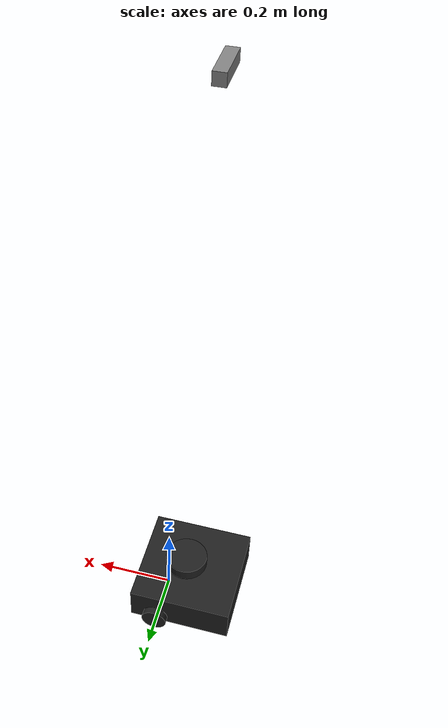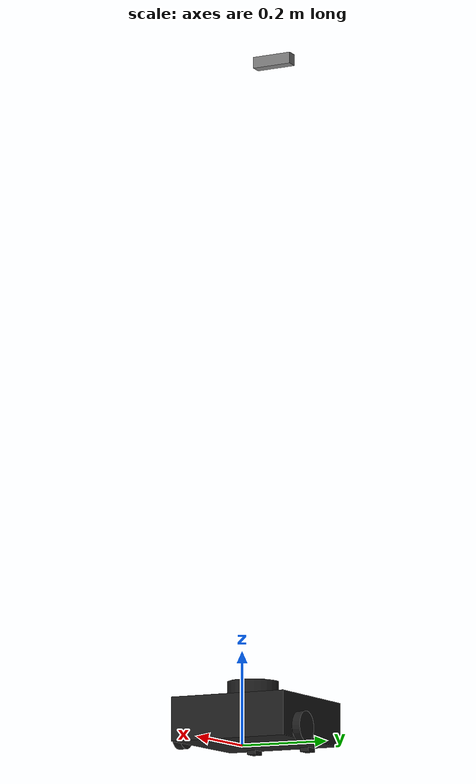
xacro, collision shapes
<?xml version="1.0" ?>

<robot name="turtlebot3_waffle_pi" xmlns:xacro="http://ros.org/wiki/xacro">
  <xacro:include filename="$(find turtlebot3_description)/urdf/common_properties.xacro"/>
  <xacro:include filename="$(find autonomous_robots)/urdf/realsense_turtlebot3_waffle_pi.gazebo.xacro"/>

  <!--File includes-->

  <xacro:macro name="sensor_d435" params="name:=realsense_camera topics_ns:=camera parent *origin publish_pointcloud:=true">
    <xacro:property name="M_PI" value="3.1415926535897931" />

    <!-- The following values are approximate, and the camera node
     publishing TF values with actual calibrated camera extrinsic values -->
    <xacro:property name="d435_cam_depth_to_left_ir_offset" value="0.0"/>
    <xacro:property name="d435_cam_depth_to_right_ir_offset" value="-0.050"/>
    <xacro:property name="d435_cam_depth_to_color_offset" value="0.015"/>

    <!-- The following values model the aluminum peripherial case for the
    D435 camera, with the camera joint represented by the actual
    peripherial camera tripod mount -->
    <xacro:property name="d435_cam_width" value="0.090"/>
    <xacro:property name="d435_cam_height" value="0.025"/>
    <xacro:property name="d435_cam_depth" value="0.02505"/>
    <xacro:property name="d435_cam_mount_from_center_offset" value="0.0149"/>

    <!-- The following offset is relative the the physical D435 camera peripherial
    camera tripod mount -->
    <xacro:property name="d435_cam_depth_px" value="${d435_cam_mount_from_center_offset}"/>
    <xacro:property name="d435_cam_depth_py" value="0.0175"/>
    <xacro:property name="d435_cam_depth_pz" value="${d435_cam_height/2}"/>

    <material name="${name}_aluminum">
    <color rgba="0.5 0.5 0.5 1"/>
    </material>

    <!-- camera body, with origin at bottom screw mount -->
    <joint name="${name}_joint" type="fixed">
      <origin xyz="-0.1 -0.01 1.5" rpy="0 0 0" />
      <parent link="${parent}"/>
      <child link="${name}_bottom_screw_frame" />
    </joint>
    <link name="${name}_bottom_screw_frame"/>

    <joint name="${name}_link_joint" type="fixed">
      <origin xyz="0 ${d435_cam_depth_py} ${d435_cam_depth_pz}" rpy="0 0 0"/>
      <parent link="${name}_bottom_screw_frame"/>
      <child link="${name}_link" />
    </joint>

    <link name="${name}_link">
      <visual>
        <origin xyz="${d435_cam_mount_from_center_offset} ${d435_cam_depth_py} 0" rpy="${M_PI/2} 0 ${M_PI/2}"/>
        <geometry>
          <mesh filename="package://realsense2_description/meshes/d435.dae" />
        </geometry>
        <material name="${name}_aluminum"/>
      </visual>
      <collision>
        <origin xyz="0 ${d435_cam_depth_py} 0" rpy="0 0 0"/>
        <geometry>
        <box size="${d435_cam_depth} ${d435_cam_width} ${d435_cam_height}"/>
        </geometry>
      </collision>
      <inertial>
        <!-- The following are not reliable values, and should not be used for modeling -->
        <mass value="0.1" />
        <origin xyz="0 0 0" rpy="0 0 0" />
        <inertia ixx="0.0" ixy="0.0" ixz="0.0" iyy="0.0" iyz="0.0" izz="0.0" />
      </inertial>
    </link>

    <!-- camera depth joints and links -->
    <joint name="${name}_depth_joint" type="fixed">
      <origin xyz="0 0 0" rpy="0 0 0"/>
      <parent link="${name}_link"/>
      <child link="${name}_depth_frame" />
    </joint>
    <link name="${name}_depth_frame"/>

    <joint name="${name}_depth_optical_joint" type="fixed">
      <origin xyz="0 0 0" rpy="${-M_PI/2} 0 ${-M_PI/2}" />
      <parent link="${name}_depth_frame" />
      <child link="${name}_depth_optical_frame" />
    </joint>
    <link name="${name}_depth_optical_frame"/>

    <!-- camera left IR joints and links -->
    <joint name="${name}_left_ir_joint" type="fixed">
      <origin xyz="0 ${d435_cam_depth_to_left_ir_offset} 0" rpy="0 0 0" />
      <parent link="${name}_depth_frame" />
      <child link="${name}_left_ir_frame" />
    </joint>
    <link name="${name}_left_ir_frame"/>

    <joint name="${name}_left_ir_optical_joint" type="fixed">
      <origin xyz="0 0 0" rpy="${-M_PI/2} 0 ${-M_PI/2}" />
      <parent link="${name}_left_ir_frame" />
      <child link="${name}_left_ir_optical_frame" />
    </joint>
    <link name="${name}_left_ir_optical_frame"/>

    <!-- camera right IR joints and links -->
    <joint name="${name}_right_ir_joint" type="fixed">
      <origin xyz="0 ${d435_cam_depth_to_right_ir_offset} 0" rpy="0 0 0" />
      <parent link="${name}_depth_frame" />
      <child link="${name}_right_ir_frame" />
    </joint>
    <link name="${name}_right_ir_frame"/>

    <joint name="${name}_right_ir_optical_joint" type="fixed">
      <origin xyz="0 0 0" rpy="${-M_PI/2} 0 ${-M_PI/2}" />
      <parent link="${name}_right_ir_frame" />
      <child link="${name}_right_ir_optical_frame" />
    </joint>
    <link name="${name}_right_ir_optical_frame"/>

    <!-- camera color joints and links -->
    <joint name="${name}_color_joint" type="fixed">
      <origin xyz="0 ${d435_cam_depth_to_color_offset} 0" rpy="0 0 0" />
      <parent link="${name}_depth_frame" />
      <child link="${name}_color_frame" />
    </joint>
    <link name="${name}_color_frame"/>

    <joint name="${name}_color_optical_joint" type="fixed">
      <origin xyz="0 0 0" rpy="${-M_PI/2} 0 ${-M_PI/2}" />
      <parent link="${name}_color_frame" />
      <child link="${name}_color_optical_frame" />
    </joint>
    <link name="${name}_color_optical_frame"/>

    <!-- Realsense Gazebo Plugin -->
    <xacro:gazebo_d435 camera_name="${name}" reference_link="${name}_link" topics_ns="${topics_ns}" depth_optical_frame="${name}_depth_optical_frame" color_optical_frame="${name}_color_optical_frame" infrared1_optical_frame="${name}_left_ir_optical_frame" infrared2_optical_frame="${name}_right_ir_optical_frame" publish_pointcloud="${publish_pointcloud}"/>

  </xacro:macro>

  <xacro:sensor_d435 name="realsense_camera" topics_ns="camera" parent="base_link" publish_pointcloud="true">
    <origin xyz="0 0 0" rpy="0 0 0" />
  </xacro:sensor_d435>

  <link name="base_footprint"/>

  <joint name="base_joint" type="fixed">
    <parent link="base_footprint"/>
    <child link="base_link" />
    <origin xyz="0 0 0.010" rpy="0 0 0"/>
  </joint>

  <link name="base_link">
    <visual>
      <origin xyz="-0.064 0 0.0" rpy="0 0 0"/>
      <geometry>
        <mesh filename="package://turtlebot3_description/meshes/bases/waffle_pi_base.stl" scale="0.001 0.001 0.001"/>
      </geometry>
      <material name="light_black"/>
    </visual>

    <collision>
      <origin xyz="-0.064 0 0.047" rpy="0 0 0"/>
      <geometry>
        <box size="0.266 0.266 0.094"/>
      </geometry>
    </collision>

    <inertial>
      <origin xyz="0 0 0" rpy="0 0 0"/>
      <mass value="1.3729096e+00"/>
      <inertia ixx="8.7002718e-03" ixy="0.0" ixz="1.1160499e-04"
              iyy="0.0" iyz="0.0"
              izz="1.4612727e-02" />
      </inertial>
  </link>

  <link name="wheel_left_link">
    <visual>
      <origin xyz="0 0 0" rpy="1.57 0 0"/>
      <geometry>
        <mesh filename="package://turtlebot3_description/meshes/wheels/left_tire.stl" scale="0.001 0.001 0.001"/>
      </geometry>
      <material name="dark"/>
    </visual>

    <collision>
      <origin xyz="0 0 0" rpy="0 0 0"/>
      <geometry>
        <cylinder length="0.018" radius="0.033"/>
      </geometry>
    </collision>

    <inertial>
      <origin xyz="0 0 0" />
      <mass value="2.8498940e-02" />
      <inertia ixx="1.1175580e-05" ixy="-4.2369783e-11" ixz="-5.9381719e-09"
              iyy="1.1192413e-05" iyz="-1.4400107e-11"
              izz="2.0712558e-05" />
    </inertial>
  </link>

  <joint name="wheel_left_joint" type="continuous">
    <parent link="base_link"/>
    <child link="wheel_left_link"/>
    <origin xyz="0.0 0.144 0.023" rpy="-1.57 0 0"/>
    <axis xyz="0 0 1"/>
  </joint>

  <link name="wheel_right_link">
    <visual>
      <origin xyz="0 0 0" rpy="1.57 0 0"/>
      <geometry>
        <mesh filename="package://turtlebot3_description/meshes/wheels/right_tire.stl" scale="0.001 0.001 0.001"/>
      </geometry>
      <material name="dark"/>
    </visual>

    <collision>
      <origin xyz="0 0 0" rpy="0 0 0"/>
      <geometry>
        <cylinder length="0.018" radius="0.033"/>
      </geometry>
    </collision>

    <inertial>
      <origin xyz="0 0 0" />
      <mass value="2.8498940e-02" />
      <inertia ixx="1.1175580e-05" ixy="-4.2369783e-11" ixz="-5.9381719e-09"
              iyy="1.1192413e-05" iyz="-1.4400107e-11"
              izz="2.0712558e-05" />
    </inertial>
  </link>

  <joint name="wheel_right_joint" type="continuous">
    <parent link="base_link"/>
    <child link="wheel_right_link"/>
    <origin xyz="0.0 -0.144 0.023" rpy="-1.57 0 0"/>
    <axis xyz="0 0 1"/>
  </joint>

  <joint name="caster_back_right_joint" type="fixed">
    <parent link="base_link"/>
    <child link="caster_back_right_link"/>
    <origin xyz="-0.177 -0.064 -0.004" rpy="-1.57 0 0"/>
  </joint>

  <link name="caster_back_right_link">
    <collision>
      <origin xyz="0 0.001 0" rpy="0 0 0"/>
      <geometry>
        <box size="0.030 0.009 0.020"/>
      </geometry>
    </collision>

    <inertial>
      <origin xyz="0 0 0" />
      <mass value="0.005" />
      <inertia ixx="0.001" ixy="0.0" ixz="0.0"
              iyy="0.001" iyz="0.0"
              izz="0.001" />
      </inertial>
  </link>

  <joint name="caster_back_left_joint" type="fixed">
    <parent link="base_link"/>
    <child link="caster_back_left_link"/>
    <origin xyz="-0.177 0.064 -0.004" rpy="-1.57 0 0"/>
  </joint>

  <link name="caster_back_left_link">
    <collision>
      <origin xyz="0 0.001 0" rpy="0 0 0"/>
      <geometry>
        <box size="0.030 0.009 0.020"/>
      </geometry>
    </collision>

    <inertial>
      <origin xyz="0 0 0" />
      <mass value="0.005" />
      <inertia ixx="0.001" ixy="0.0" ixz="0.0"
              iyy="0.001" iyz="0.0"
              izz="0.001" />
      </inertial>
  </link>

  <joint name="imu_joint" type="fixed">
    <parent link="base_link"/>
    <child link="imu_link"/>
    <origin xyz="0.0 0 0.068" rpy="0 0 0"/>
  </joint>

  <link name="imu_link"/>

  <joint name="scan_joint" type="fixed">
    <parent link="base_link"/>
    <child link="base_scan"/>
    <origin xyz="-0.064 0 0.122" rpy="0 0 0"/>
  </joint>

  <link name="base_scan">
    <visual>
      <origin xyz="0 0 0.0" rpy="0 0 0"/>
      <geometry>
        <mesh filename="package://turtlebot3_description/meshes/sensors/lds.stl" scale="0.001 0.001 0.001"/>
      </geometry>
      <material name="dark"/>
    </visual>

    <collision>
      <origin xyz="0.015 0 -0.0065" rpy="0 0 0"/>
      <geometry>
        <cylinder length="0.0315" radius="0.055"/>
      </geometry>
    </collision>

    <inertial>
      <mass value="0.114" />
      <origin xyz="0 0 0" />
      <inertia ixx="0.001" ixy="0.0" ixz="0.0"
              iyy="0.001" iyz="0.0"
              izz="0.001" />
      </inertial>
  </link>

  <joint name="camera_rgb_joint" type="fixed">
    <origin xyz="0.003 0.011 0.009" rpy="0 0 0"/>
    <parent link="realsense_camera_link"/>
    <child link="camera_rgb_frame"/>
  </joint>
  <link name="camera_rgb_frame"/>

  <joint name="camera_rgb_optical_joint" type="fixed">
    <origin xyz="0 0 0" rpy="-1.57 0 -1.57"/>
    <parent link="camera_rgb_frame"/>
    <child link="camera_rgb_optical_frame"/>
  </joint>
  <link name="camera_rgb_optical_frame"/>

</robot>
